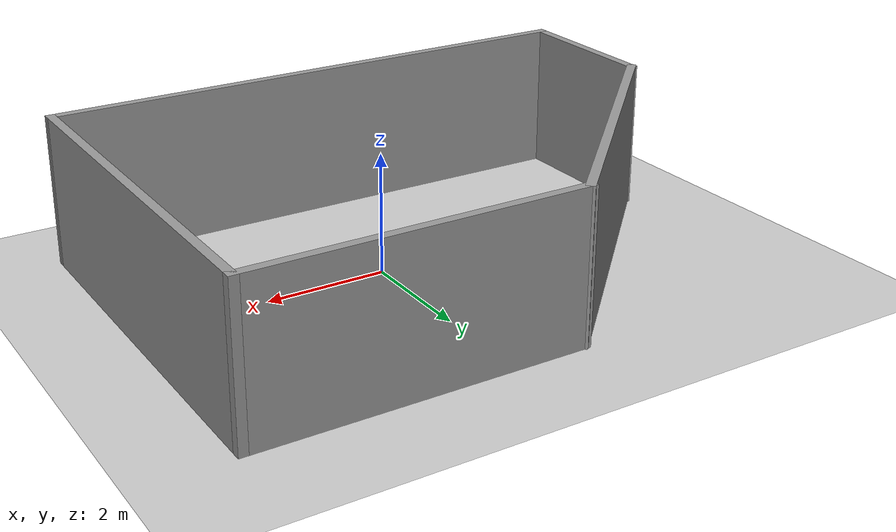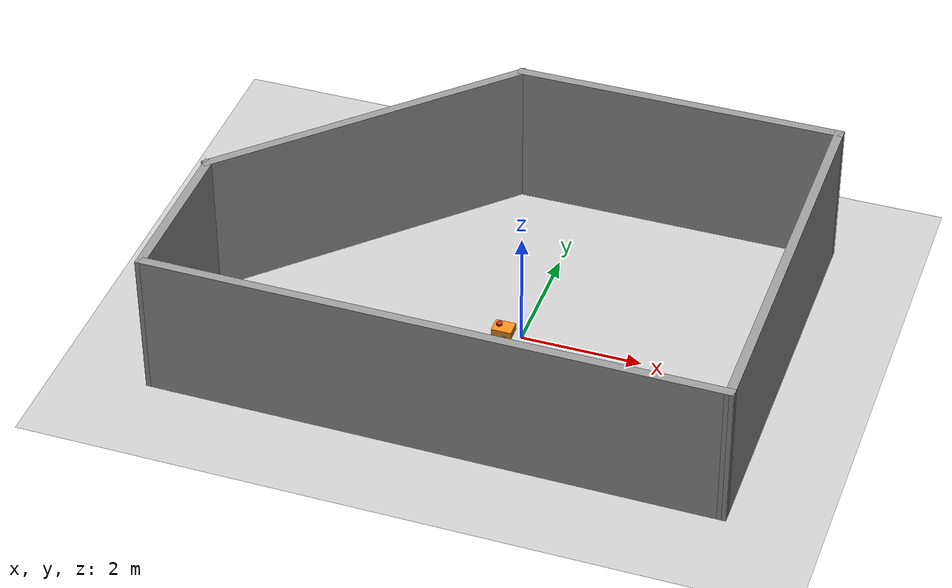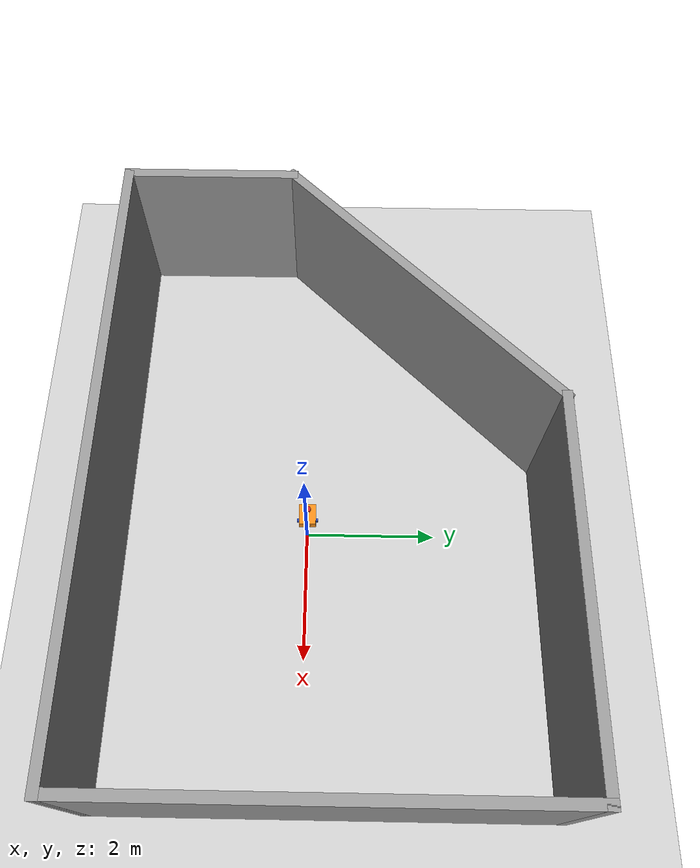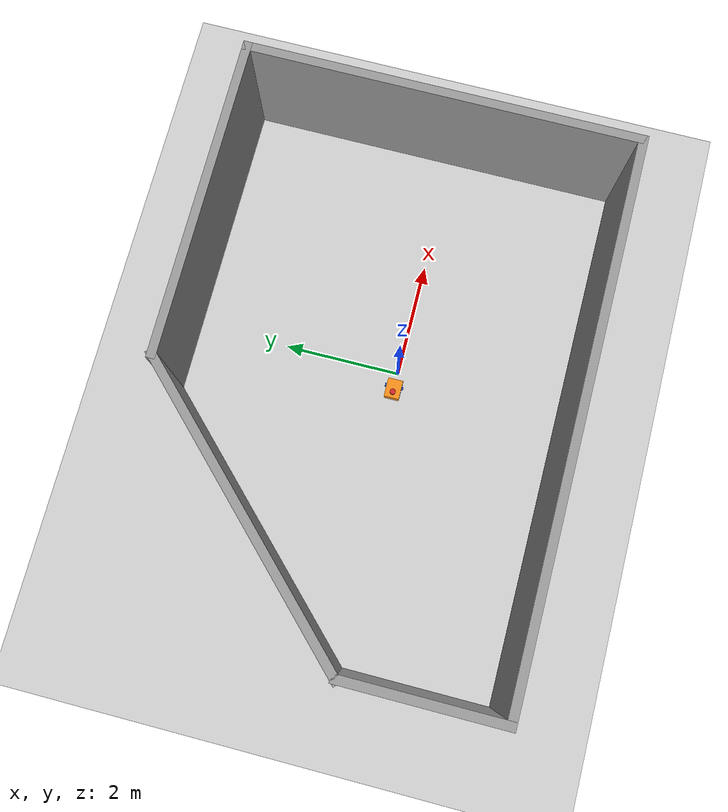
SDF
<sdf version="1.7">
 <world name="default">
  <light name="sun" type="directional">
   <pose>0 0 10 0 -0 0</pose>
   <diffuse>0.8 0.8 0.8 1</diffuse>
   <specular>0.2 0.2 0.2 1</specular>
   <attenuation>
    <range>1000</range>
    <constant>0.9</constant>
    <linear>0.01</linear>
    <quadratic>0.001</quadratic>
   </attenuation>
   <direction>-0.5 0.1 -0.9</direction>
   <spot><inner_angle>0</inner_angle><outer_angle>0</outer_angle><falloff>0</falloff></spot>
  </light>
  <model name="ground_plane">
   <static>1</static>
   <link name="link">
    <collision name="collision">
     <geometry><plane><normal>0 0 1</normal><size>100 100</size></plane></geometry>
     <surface><friction><ode><mu>100</mu><mu2>50</mu2></ode></friction></surface>
    </collision>
    <visual name="visual">
     <cast_shadows>0</cast_shadows>
     <geometry><plane><normal>0 0 1</normal><size>100 100</size></plane></geometry>
     <material>
      <script><uri>file://media/materials/scripts/gazebo.material</uri><name>Gazebo/Grey</name></script>
     </material>
    </visual>
   </link>
  </model>
  <gravity>0 0 -9.8</gravity>
  <magnetic_field>6e-06 2.3e-05 -4.2e-05</magnetic_field>
  <atmosphere type="adiabatic"/>
  <physics type="ode">
   <max_step_size>0.001</max_step_size>
   <real_time_factor>1</real_time_factor>
   <real_time_update_rate>1000</real_time_update_rate>
  </physics>
  <scene><ambient>0.4 0.4 0.4 1</ambient><background>0.7 0.7 0.7 1</background><shadows>1</shadows></scene>
  <audio><device>default</device></audio>
  <spherical_coordinates>
   <surface_model>EARTH_WGS84</surface_model>
   <latitude_deg>0</latitude_deg>
   <longitude_deg>0</longitude_deg>
   <elevation>0</elevation>
   <heading_deg>0</heading_deg>
  </spherical_coordinates>
  <model name="my_bot">
   <link name="base_link">
    <inertial>
     <pose>-0.071082 0 0.075033 0 -0 0</pose>
     <mass>0.61</mass>
     <inertia>
      <ixx>0.00482981</ixx>
      <ixy>0</ixy>
      <ixz>0.000516598</ixz>
      <iyy>0.00702444</iyy>
      <iyz>0</iyz>
      <izz>0.0081721</izz>
     </inertia>
    </inertial>
    <collision name="base_link_fixed_joint_lump__chassis_collision">
     <pose>-0.0585 0 0.059 0 -0 0</pose>
     <geometry><box><size>0.335 0.265 0.138</size></box></geometry>
    </collision>
    <collision name="base_link_fixed_joint_lump__caster_wheel_collision_1">
     <pose>-0.151 0 -0.023 0 -0 0</pose>
     <geometry><sphere><radius>0.01</radius></sphere></geometry>
     <surface><friction><ode><mu>0.001</mu><mu2>0.001</mu2></ode></friction></surface>
    </collision>
    <collision name="base_link_fixed_joint_lump__laser_frame_collision_2">
     <pose>-0.126 0 0.165 0 -0 0</pose>
     <geometry><cylinder><length>0.04</length><radius>0.05</radius></cylinder></geometry>
    </collision>
    <visual name="base_link_fixed_joint_lump__chassis_visual">
     <pose>-0.0585 0 0.059 0 -0 0</pose>
     <geometry><box><size>0.335 0.265 0.138</size></box></geometry>
     <material>
      <script><name>Gazebo/Orange</name><uri>file://media/materials/scripts/gazebo.material</uri></script>
     </material>
    </visual>
    <visual name="base_link_fixed_joint_lump__camera_link_visual_1">
     <pose>0.079 0 0.07 0 -0 0</pose>
     <geometry><box><size>0.01 0.03 0.03</size></box></geometry>
     <material>
      <script><name>Gazebo/Red</name><uri>file://media/materials/scripts/gazebo.material</uri></script>
     </material>
    </visual>
    <visual name="base_link_fixed_joint_lump__caster_wheel_visual_2">
     <pose>-0.151 0 -0.023 0 -0 0</pose>
     <geometry><sphere><radius>0.01</radius></sphere></geometry>
     <material>
      <script><name>Gazebo/White</name><uri>file://media/materials/scripts/gazebo.material</uri></script>
     </material>
    </visual>
    <visual name="base_link_fixed_joint_lump__face_link_visual_3">
     <pose>0.109 0.05 0.069 3.14159 1.57079 3.14159</pose>
     <geometry><cylinder><length>0.002</length><radius>0.01</radius></cylinder></geometry>
     <material>
      <script><name>Gazebo/Black</name><uri>file://media/materials/scripts/gazebo.material</uri></script>
     </material>
    </visual>
    <visual name="base_link_fixed_joint_lump__face_link_visual_4">
     <pose>0.109 -0.05 0.069 3.14159 1.57079 3.14159</pose>
     <geometry><cylinder><length>0.002</length><radius>0.01</radius></cylinder></geometry>
     <material>
      <script><name>Gazebo/Black</name><uri>file://media/materials/scripts/gazebo.material</uri></script>
     </material>
    </visual>
    <visual name="base_link_fixed_joint_lump__face_link_visual_5">
     <pose>0.098 0 0.059 0 1.5 0</pose>
     <geometry><cylinder><length>0.02</length><radius>0.05</radius></cylinder></geometry>
     <material>
      <script><name>Gazebo/Black</name><uri>file://media/materials/scripts/gazebo.material</uri></script>
     </material>
    </visual>
    <visual name="base_link_fixed_joint_lump__laser_frame_visual_6">
     <pose>-0.126 0 0.165 0 -0 0</pose>
     <geometry><cylinder><length>0.04</length><radius>0.05</radius></cylinder></geometry>
     <material>
      <script><name>Gazebo/Red</name><uri>file://media/materials/scripts/gazebo.material</uri></script>
     </material>
    </visual>
    <sensor name="camera" type="depth">
     <visualize>1</visualize>
     <update_rate>10</update_rate>
     <camera>
      <horizontal_fov>1.089</horizontal_fov>
      <image><format>B8G8R8</format><width>640</width><height>480</height></image>
      <clip><near>0.05</near><far>8</far></clip>
     </camera>
     <plugin name="camera_controller" filename="libgazebo_ros_camera.so">
      <frame_name>camera_link_optical</frame_name>
      <min_depth>0.1</min_depth>
      <max_depth>100.0</max_depth>
     </plugin>
     <pose>0.079 0 0.07 0 -0 0</pose>
    </sensor>
    <sensor name="laser" type="ray">
     <visualize>1</visualize>
     <update_rate>10</update_rate>
     <ray>
      <scan>
       <horizontal>
        <samples>360</samples>
        <min_angle>-3.14</min_angle>
        <max_angle>3.14</max_angle>
        <resolution>1</resolution>
       </horizontal>
       <vertical><samples>1</samples><min_angle>0</min_angle><max_angle>0</max_angle></vertical>
      </scan>
      <range><min>0.3</min><max>12</max></range>
     </ray>
     <plugin name="laser_controller" filename="libgazebo_ros_ray_sensor.so">
      <ros><argument>~/out:=scan</argument></ros>
      <output_type>sensor_msgs/LaserScan</output_type>
      <frame_name>laser_frame</frame_name>
     </plugin>
     <pose>-0.126 0 0.165 0 -0 0</pose>
    </sensor>
   </link>
   <joint name="left_wheel_joint" type="revolute">
    <pose relative_to="base_link">0 0.1485 0 -1.5708 0 0</pose>
    <parent>base_link</parent>
    <child>left_wheel</child>
    <axis>
     <xyz>0 0 1</xyz>
     <limit><lower>-1e+16</lower><upper>1e+16</upper></limit>
     <dynamics><spring_reference>0</spring_reference><spring_stiffness>0</spring_stiffness></dynamics>
    </axis>
   </joint>
   <link name="left_wheel">
    <pose relative_to="left_wheel_joint">0 0 0 0 -0 0</pose>
    <inertial>
     <mass>0.05</mass>
     <inertia>
      <ixx>1.64292e-05</ixx>
      <ixy>0</ixy>
      <ixz>0</ixz>
      <iyy>1.64292e-05</iyy>
      <iyz>0</iyz>
      <izz>2.7225e-05</izz>
     </inertia>
    </inertial>
    <collision name="left_wheel_collision">
     <geometry><sphere><radius>0.033</radius></sphere></geometry>
    </collision>
    <visual name="left_wheel_visual">
     <geometry><cylinder><length>0.026</length><radius>0.033</radius></cylinder></geometry>
     <material>
      <script><name>Gazebo/Blue</name><uri>file://media/materials/scripts/gazebo.material</uri></script>
     </material>
    </visual>
   </link>
   <joint name="right_wheel_joint" type="revolute">
    <pose relative_to="base_link">0 -0.1485 0 1.5708 -0 0</pose>
    <parent>base_link</parent>
    <child>right_wheel</child>
    <axis>
     <xyz>0 0 -1</xyz>
     <limit><lower>-1e+16</lower><upper>1e+16</upper></limit>
     <dynamics><spring_reference>0</spring_reference><spring_stiffness>0</spring_stiffness></dynamics>
    </axis>
   </joint>
   <link name="right_wheel">
    <pose relative_to="right_wheel_joint">0 0 0 0 -0 0</pose>
    <inertial>
     <mass>0.05</mass>
     <inertia>
      <ixx>1.64292e-05</ixx>
      <ixy>0</ixy>
      <ixz>0</ixz>
      <iyy>1.64292e-05</iyy>
      <iyz>0</iyz>
      <izz>2.7225e-05</izz>
     </inertia>
    </inertial>
    <collision name="right_wheel_collision">
     <geometry><sphere><radius>0.033</radius></sphere></geometry>
    </collision>
    <visual name="right_wheel_visual">
     <geometry><cylinder><length>0.026</length><radius>0.033</radius></cylinder></geometry>
     <material>
      <script><name>Gazebo/Blue</name><uri>file://media/materials/scripts/gazebo.material</uri></script>
     </material>
    </visual>
   </link>
   <static>0</static>
   <plugin name="gazebo_ros2_control" filename="libgazebo_ros2_control.so">
    <parameters>/home/huy/dev_ws/install/my_package/share/my_package/config/my_controllers.yaml</parameters>
   </plugin>
   <pose>-0.241311 -0.000178 0.032997 1.7e-05 1.9e-05 0.005864</pose>
  </model>
  <model name="test#1">
   <pose>-0.517873 0.362607 0 0 -0 0</pose>
   <link name="Wall_10">
    <collision name="Wall_10_Collision">
     <geometry><box><size>5.75 0.15 2.5</size></box></geometry>
     <pose>0 0 1.25 0 -0 0</pose>
    </collision>
    <visual name="Wall_10_Visual">
     <pose>0 0 1.25 0 -0 0</pose>
     <geometry><box><size>5.75 0.15 2.5</size></box></geometry>
     <material>
      <script><uri>file://media/materials/scripts/gazebo.material</uri><name>Gazebo/Grey</name></script>
      <ambient>1 1 1 1</ambient>
     </material>
     <meta><layer>0</layer></meta>
    </visual>
    <pose>-2.65964 1.30474 0 0 -0 -2.35619</pose>
   </link>
   <link name="Wall_2">
    <collision name="Wall_2_Collision">
     <geometry><box><size>2.75 0.15 2.5</size></box></geometry>
     <pose>0 0 1.25 0 -0 0</pose>
    </collision>
    <visual name="Wall_2_Visual">
     <pose>0 0 1.25 0 -0 0</pose>
     <geometry><box><size>2.75 0.15 2.5</size></box></geometry>
     <material>
      <script><uri>file://media/materials/scripts/gazebo.material</uri><name>Gazebo/Grey</name></script>
      <ambient>1 1 1 1</ambient>
     </material>
     <meta><layer>0</layer></meta>
    </visual>
    <pose>-4.62727 -1.97163 0 0 -0 -1.5708</pose>
   </link>
   <link name="Wall_3">
    <collision name="Wall_3_Collision">
     <geometry><box><size>9.44326 0.15 2.5</size></box></geometry>
     <pose>0 0 1.25 0 -0 0</pose>
    </collision>
    <visual name="Wall_3_Visual">
     <pose>0 0 1.25 0 -0 0</pose>
     <geometry><box><size>9.44326 0.15 2.5</size></box></geometry>
     <material>
      <script><uri>file://media/materials/scripts/gazebo.material</uri><name>Gazebo/Grey</name></script>
      <ambient>1 1 1 1</ambient>
     </material>
     <meta><layer>0</layer></meta>
    </visual>
    <pose>0.023678 -3.2935 0 0 -0 -0.004705</pose>
   </link>
   <link name="Wall_4">
    <collision name="Wall_4_Collision">
     <geometry><box><size>6.75 0.15 2.5</size></box></geometry>
     <pose>0 0 1.25 0 -0 0</pose>
    </collision>
    <visual name="Wall_4_Visual">
     <pose>0 0 1.25 0 -0 0</pose>
     <geometry><box><size>6.75 0.15 2.5</size></box></geometry>
     <material>
      <script><uri>file://media/materials/scripts/gazebo.material</uri><name>Gazebo/Grey</name></script>
      <ambient>1 1 1 1</ambient>
     </material>
     <meta><layer>0</layer></meta>
    </visual>
    <pose>4.67026 -0.015357 0 0 -0 1.5708</pose>
   </link>
   <link name="Wall_5">
    <collision name="Wall_5_Collision">
     <geometry><box><size>5.5 0.15 2.5</size></box></geometry>
     <pose>0 0 1.25 0 -0 0</pose>
    </collision>
    <visual name="Wall_5_Visual">
     <pose>0 0 1.25 0 -0 0</pose>
     <geometry><box><size>5.5 0.15 2.5</size></box></geometry>
     <material>
      <script><uri>file://media/materials/scripts/gazebo.material</uri><name>Gazebo/Grey</name></script>
      <ambient>1 1 1 1</ambient>
     </material>
     <meta><layer>0</layer></meta>
    </visual>
    <pose>1.99526 3.28464 0 0 -0 3.14159</pose>
   </link>
   <static>1</static>
  </model>
 </world>
</sdf>
